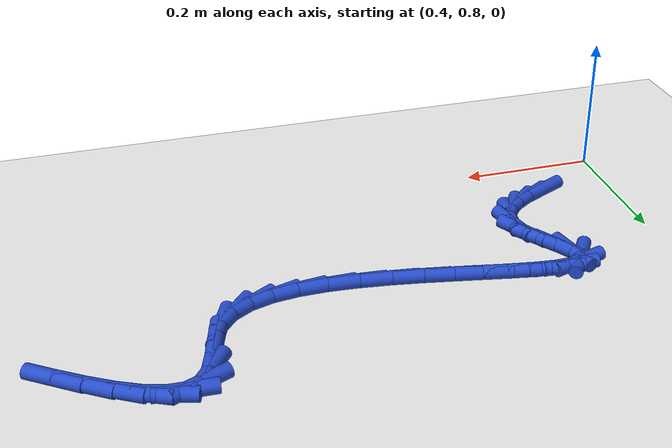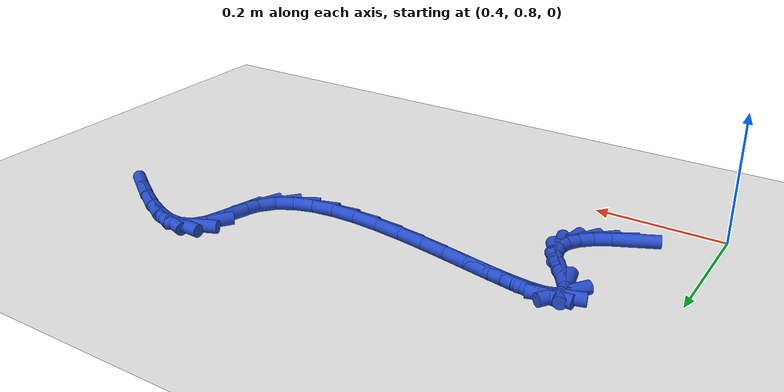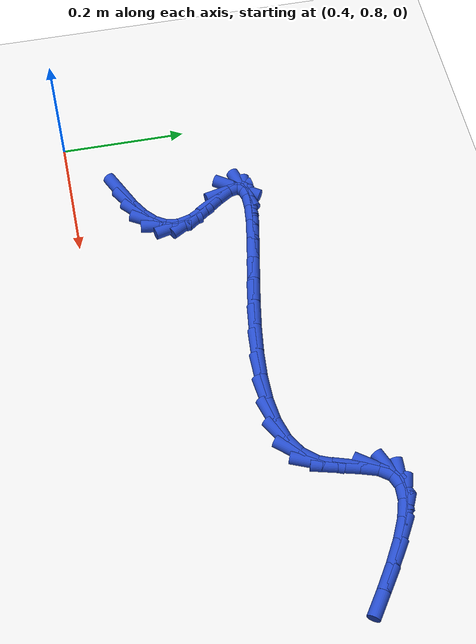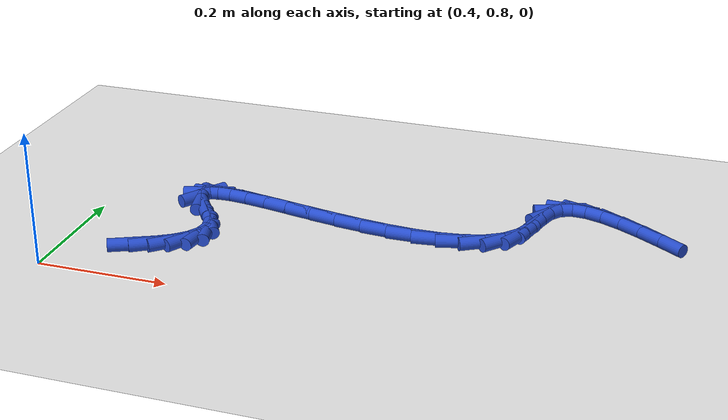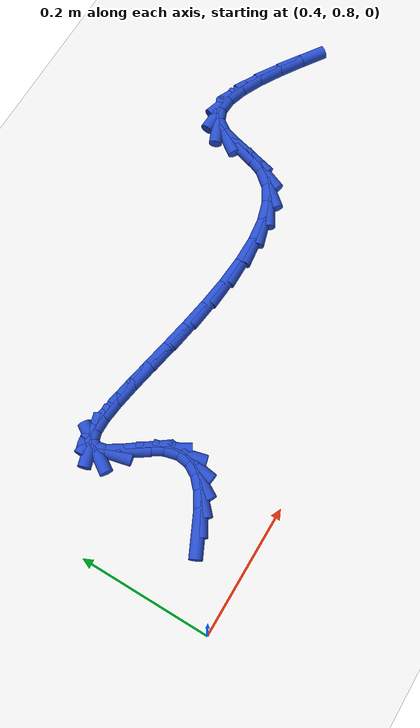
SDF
<sdf version="1.6">
 <world name="default">
  <model name="ground_plane">
   <static>1</static>
   <link name="link">
    <collision name="collision">
     <geometry><plane><normal>0 0 1</normal><size>100 100</size></plane></geometry>
     <surface><friction><ode><mu>100</mu><mu2>50</mu2></ode></friction></surface>
    </collision>
    <visual name="visual">
     <cast_shadows>0</cast_shadows>
     <geometry><plane><normal>0 0 1</normal><size>100 100</size></plane></geometry>
     <material>
      <script><uri>file://media/materials/scripts/gazebo.material</uri><name>Gazebo/WhiteGlow</name></script>
     </material>
    </visual>
   </link>
  </model>
  <model name="line">
   <link name="link_37">
    <pose>0.5128382767782735 0.8817707462895515 0.01 0 1.57 0.4435798267506703</pose>
    <collision name="collision">
     <geometry><cylinder><radius>0.01</radius><length>0.08</length></cylinder></geometry>
    </collision>
    <visual name="visual">
     <material>
      <script><name>Gazebo/Blue</name><uri>file://media/materials/scripts/gazebo.material</uri></script>
     </material>
     <geometry><cylinder><radius>0.01</radius><length>0.08</length></cylinder></geometry>
    </visual>
   </link>
   <link name="link_38">
    <pose>0.539784136310962 0.8945743723752806 0.01 0 1.57 0.5593846322800319</pose>
    <collision name="collision">
     <geometry><cylinder><radius>0.01</radius><length>0.08</length></cylinder></geometry>
    </collision>
    <visual name="visual">
     <material>
      <script><name>Gazebo/Blue</name><uri>file://media/materials/scripts/gazebo.material</uri></script>
     </material>
     <geometry><cylinder><radius>0.01</radius><length>0.08</length></cylinder></geometry>
    </visual>
   </link>
   <link name="link_39">
    <pose>0.5620475209770007 0.9085133131635202 0.01 0 1.57 0.7457247708682181</pose>
    <collision name="collision">
     <geometry><cylinder><radius>0.01</radius><length>0.08</length></cylinder></geometry>
    </collision>
    <visual name="visual">
     <material>
      <script><name>Gazebo/Blue</name><uri>file://media/materials/scripts/gazebo.material</uri></script>
     </material>
     <geometry><cylinder><radius>0.01</radius><length>0.08</length></cylinder></geometry>
    </visual>
   </link>
   <link name="link_40">
    <pose>0.5787298908203096 0.9239218591141487 0.01 0 1.57 1.035718730863639</pose>
    <collision name="collision">
     <geometry><cylinder><radius>0.01</radius><length>0.08</length></cylinder></geometry>
    </collision>
    <visual name="visual">
     <material>
      <script><name>Gazebo/Blue</name><uri>file://media/materials/scripts/gazebo.material</uri></script>
     </material>
     <geometry><cylinder><radius>0.01</radius><length>0.08</length></cylinder></geometry>
    </visual>
   </link>
   <link name="link_41">
    <pose>0.5889327058848091 0.9411343006870445 0.01 0 1.57 1.425844484476826</pose>
    <collision name="collision">
     <geometry><cylinder><radius>0.01</radius><length>0.08</length></cylinder></geometry>
    </collision>
    <visual name="visual">
     <material>
      <script><name>Gazebo/Blue</name><uri>file://media/materials/scripts/gazebo.material</uri></script>
     </material>
     <geometry><cylinder><radius>0.01</radius><length>0.08</length></cylinder></geometry>
    </visual>
   </link>
   <link name="link_42">
    <pose>0.5917574262144193 0.9604849283420853 0.01 0 1.57 -1.3259842156426436</pose>
    <collision name="collision">
     <geometry><cylinder><radius>0.01</radius><length>0.08</length></cylinder></geometry>
    </collision>
    <visual name="visual">
     <material>
      <script><name>Gazebo/Blue</name><uri>file://media/materials/scripts/gazebo.material</uri></script>
     </material>
     <geometry><cylinder><radius>0.01</radius><length>0.08</length></cylinder></geometry>
    </visual>
   </link>
   <link name="link_43">
    <pose>0.5863055118530607 0.9823080325391496 0.01 0 1.57 -1.0459115863139774</pose>
    <collision name="collision">
     <geometry><cylinder><radius>0.01</radius><length>0.08</length></cylinder></geometry>
    </collision>
    <visual name="visual">
     <material>
      <script><name>Gazebo/Blue</name><uri>file://media/materials/scripts/gazebo.material</uri></script>
     </material>
     <geometry><cylinder><radius>0.01</radius><length>0.08</length></cylinder></geometry>
    </visual>
   </link>
   <link name="link_44">
    <pose>0.5721767744905015 1.006707208733822 0.01 0 1.57 -0.9435112723755731</pose>
    <collision name="collision">
     <geometry><cylinder><radius>0.01</radius><length>0.08</length></cylinder></geometry>
    </collision>
    <visual name="visual">
     <material>
      <script><name>Gazebo/Blue</name><uri>file://media/materials/scripts/gazebo.material</uri></script>
     </material>
     <geometry><cylinder><radius>0.01</radius><length>0.08</length></cylinder></geometry>
    </visual>
   </link>
   <link name="link_45">
    <pose>0.5543511150022675 1.0312955224353124 0.01 0 1.57 -1.0042993922145915</pose>
    <collision name="collision">
     <geometry><cylinder><radius>0.01</radius><length>0.08</length></cylinder></geometry>
    </collision>
    <visual name="visual">
     <material>
      <script><name>Gazebo/Blue</name><uri>file://media/materials/scripts/gazebo.material</uri></script>
     </material>
     <geometry><cylinder><radius>0.01</radius><length>0.08</length></cylinder></geometry>
    </visual>
   </link>
   <link name="link_46">
    <pose>0.5410694321673851 1.05217744566448 0.01 0 1.57 -1.344952709872613</pose>
    <collision name="collision">
     <geometry><cylinder><radius>0.01</radius><length>0.08</length></cylinder></geometry>
    </collision>
    <visual name="visual">
     <material>
      <script><name>Gazebo/Blue</name><uri>file://media/materials/scripts/gazebo.material</uri></script>
     </material>
     <geometry><cylinder><radius>0.01</radius><length>0.08</length></cylinder></geometry>
    </visual>
   </link>
   <link name="link_47">
    <pose>0.5376826420435615 1.066917786595661 0.01 0 1.57 0.9791760040284256</pose>
    <collision name="collision">
     <geometry><cylinder><radius>0.01</radius><length>0.08</length></cylinder></geometry>
    </collision>
    <visual name="visual">
     <material>
      <script><name>Gazebo/Blue</name><uri>file://media/materials/scripts/gazebo.material</uri></script>
     </material>
     <geometry><cylinder><radius>0.01</radius><length>0.08</length></cylinder></geometry>
    </visual>
   </link>
   <link name="link_48">
    <pose>0.5437781699800907 1.0759897963050913 0.01 0 1.57 0.2830122267667571</pose>
    <collision name="collision">
     <geometry><cylinder><radius>0.01</radius><length>0.08</length></cylinder></geometry>
    </collision>
    <visual name="visual">
     <material>
      <script><name>Gazebo/Blue</name><uri>file://media/materials/scripts/gazebo.material</uri></script>
     </material>
     <geometry><cylinder><radius>0.01</radius><length>0.08</length></cylinder></geometry>
    </visual>
   </link>
   <link name="link_49">
    <pose>0.5582728637803533 1.0802051208803385 0.01 0 1.57 0.007807269390180042</pose>
    <collision name="collision">
     <geometry><cylinder><radius>0.01</radius><length>0.08</length></cylinder></geometry>
    </collision>
    <visual name="visual">
     <material>
      <script><name>Gazebo/Blue</name><uri>file://media/materials/scripts/gazebo.material</uri></script>
     </material>
     <geometry><cylinder><radius>0.01</radius><length>0.08</length></cylinder></geometry>
    </visual>
   </link>
   <link name="link_50">
    <pose>0.5800835712477308 1.0803754064089712 0.01 0 1.57 -0.10879544085884654</pose>
    <collision name="collision">
     <geometry><cylinder><radius>0.01</radius><length>0.08</length></cylinder></geometry>
    </collision>
    <visual name="visual">
     <material>
      <script><name>Gazebo/Blue</name><uri>file://media/materials/scripts/gazebo.material</uri></script>
     </material>
     <geometry><cylinder><radius>0.01</radius><length>0.08</length></cylinder></geometry>
    </visual>
   </link>
   <link name="link_51">
    <pose>0.6081271401856042 1.0773122989785566 0.01 0 1.57 -0.16376016130478466</pose>
    <collision name="collision">
     <geometry><cylinder><radius>0.01</radius><length>0.08</length></cylinder></geometry>
    </collision>
    <visual name="visual">
     <material>
      <script><name>Gazebo/Blue</name><uri>file://media/materials/scripts/gazebo.material</uri></script>
     </material>
     <geometry><cylinder><radius>0.01</radius><length>0.08</length></cylinder></geometry>
    </visual>
   </link>
   <link name="link_52">
    <pose>0.6413204183973549 1.0718274446766622 0.01 0 1.57 -0.18816565636135835</pose>
    <collision name="collision">
     <geometry><cylinder><radius>0.01</radius><length>0.08</length></cylinder></geometry>
    </collision>
    <visual name="visual">
     <material>
      <script><name>Gazebo/Blue</name><uri>file://media/materials/scripts/gazebo.material</uri></script>
     </material>
     <geometry><cylinder><radius>0.01</radius><length>0.08</length></cylinder></geometry>
    </visual>
   </link>
   <link name="link_53">
    <pose>0.6785802536863641 1.0647324895908563 0.01 0 1.57 -0.19368368983215872</pose>
    <collision name="collision">
     <geometry><cylinder><radius>0.01</radius><length>0.08</length></cylinder></geometry>
    </collision>
    <visual name="visual">
     <material>
      <script><name>Gazebo/Blue</name><uri>file://media/materials/scripts/gazebo.material</uri></script>
     </material>
     <geometry><cylinder><radius>0.01</radius><length>0.08</length></cylinder></geometry>
    </visual>
   </link>
   <link name="link_54">
    <pose>0.7188234938560124 1.056839079808707 0.01 0 1.57 -0.18485079265071616</pose>
    <collision name="collision">
     <geometry><cylinder><radius>0.01</radius><length>0.08</length></cylinder></geometry>
    </collision>
    <visual name="visual">
     <material>
      <script><name>Gazebo/Blue</name><uri>file://media/materials/scripts/gazebo.material</uri></script>
     </material>
     <geometry><cylinder><radius>0.01</radius><length>0.08</length></cylinder></geometry>
    </visual>
   </link>
   <link name="link_55">
    <pose>0.760966986709682 1.048958861417781 0.01 0 1.57 -0.1627760877235763</pose>
    <collision name="collision">
     <geometry><cylinder><radius>0.01</radius><length>0.08</length></cylinder></geometry>
    </collision>
    <visual name="visual">
     <material>
      <script><name>Gazebo/Blue</name><uri>file://media/materials/scripts/gazebo.material</uri></script>
     </material>
     <geometry><cylinder><radius>0.01</radius><length>0.08</length></cylinder></geometry>
    </visual>
   </link>
   <link name="link_56">
    <pose>0.8039275800507533 1.0419034805056469 0.01 0 1.57 -0.12624745341101354</pose>
    <collision name="collision">
     <geometry><cylinder><radius>0.01</radius><length>0.08</length></cylinder></geometry>
    </collision>
    <visual name="visual">
     <material>
      <script><name>Gazebo/Blue</name><uri>file://media/materials/scripts/gazebo.material</uri></script>
     </material>
     <geometry><cylinder><radius>0.01</radius><length>0.08</length></cylinder></geometry>
    </visual>
   </link>
   <link name="link_57">
    <pose>0.846622121682608 1.0364845831598724 0.01 0 1.57 -0.07172927232584644</pose>
    <collision name="collision">
     <geometry><cylinder><radius>0.01</radius><length>0.08</length></cylinder></geometry>
    </collision>
    <visual name="visual">
     <material>
      <script><name>Gazebo/Blue</name><uri>file://media/materials/scripts/gazebo.material</uri></script>
     </material>
     <geometry><cylinder><radius>0.01</radius><length>0.08</length></cylinder></geometry>
    </visual>
   </link>
   <link name="link_58">
    <pose>0.8879674594086271 1.033513815468025 0.01 0 1.57 0.007426897754686918</pose>
    <collision name="collision">
     <geometry><cylinder><radius>0.01</radius><length>0.08</length></cylinder></geometry>
    </collision>
    <visual name="visual">
     <material>
      <script><name>Gazebo/Blue</name><uri>file://media/materials/scripts/gazebo.material</uri></script>
     </material>
     <geometry><cylinder><radius>0.01</radius><length>0.08</length></cylinder></geometry>
    </visual>
   </link>
   <link name="link_59">
    <pose>0.9268804410321914 1.0338028235176728 0.01 0 1.57 0.12256730114680607</pose>
    <collision name="collision">
     <geometry><cylinder><radius>0.01</radius><length>0.08</length></cylinder></geometry>
    </collision>
    <visual name="visual">
     <material>
      <script><name>Gazebo/Blue</name><uri>file://media/materials/scripts/gazebo.material</uri></script>
     </material>
     <geometry><cylinder><radius>0.01</radius><length>0.08</length></cylinder></geometry>
    </visual>
   </link>
   <link name="link_60">
    <pose>0.9622779143566829 1.0381632533963836 0.01 0 1.57 0.29157159140706174</pose>
    <collision name="collision">
     <geometry><cylinder><radius>0.01</radius><length>0.08</length></cylinder></geometry>
    </collision>
    <visual name="visual">
     <material>
      <script><name>Gazebo/Blue</name><uri>file://media/materials/scripts/gazebo.material</uri></script>
     </material>
     <geometry><cylinder><radius>0.01</radius><length>0.08</length></cylinder></geometry>
    </visual>
   </link>
   <link name="link_61">
    <pose>0.993076727185482 1.0474067511917244 0.01 0 1.57 0.5365466157539174</pose>
    <collision name="collision">
     <geometry><cylinder><radius>0.01</radius><length>0.08</length></cylinder></geometry>
    </collision>
    <visual name="visual">
     <material>
      <script><name>Gazebo/Blue</name><uri>file://media/materials/scripts/gazebo.material</uri></script>
     </material>
     <geometry><cylinder><radius>0.01</radius><length>0.08</length></cylinder></geometry>
    </visual>
   </link>
   <link name="link_62">
    <pose>1.0181937273219703 1.0623449629912642 0.01 0 1.57 0.8629508604575247</pose>
    <collision name="collision">
     <geometry><cylinder><radius>0.01</radius><length>0.08</length></cylinder></geometry>
    </collision>
    <visual name="visual">
     <material>
      <script><name>Gazebo/Blue</name><uri>file://media/materials/scripts/gazebo.material</uri></script>
     </material>
     <geometry><cylinder><radius>0.01</radius><length>0.08</length></cylinder></geometry>
    </visual>
   </link>
   <link name="link_63">
    <pose>1.0365457625695291 1.0837895348825701 0.01 0 1.57 1.182268750996283</pose>
    <collision name="collision">
     <geometry><cylinder><radius>0.01</radius><length>0.08</length></cylinder></geometry>
    </collision>
    <visual name="visual">
     <material>
      <script><name>Gazebo/Blue</name><uri>file://media/materials/scripts/gazebo.material</uri></script>
     </material>
     <geometry><cylinder><radius>0.01</radius><length>0.08</length></cylinder></geometry>
    </visual>
   </link>
   <link name="link_64">
    <pose>1.047901483114695 1.11153142778282 0.01 0 1.57 1.318170365950178</pose>
    <collision name="collision">
     <geometry><cylinder><radius>0.01</radius><length>0.08</length></cylinder></geometry>
    </collision>
    <visual name="visual">
     <material>
      <script><name>Gazebo/Blue</name><uri>file://media/materials/scripts/gazebo.material</uri></script>
     </material>
     <geometry><cylinder><radius>0.01</radius><length>0.08</length></cylinder></geometry>
    </visual>
   </link>
   <link name="link_65">
    <pose>1.0555465507052335 1.1411472899756216 0.01 0 1.57 1.2675876353500377</pose>
    <collision name="collision">
     <geometry><cylinder><radius>0.01</radius><length>0.08</length></cylinder></geometry>
    </collision>
    <visual name="visual">
     <material>
      <script><name>Gazebo/Blue</name><uri>file://media/materials/scripts/gazebo.material</uri></script>
     </material>
     <geometry><cylinder><radius>0.01</radius><length>0.08</length></cylinder></geometry>
    </visual>
   </link>
   <link name="link_66">
    <pose>1.0636742093600924 1.1671262454743698 0.01 0 1.57 0.9421194328646237</pose>
    <collision name="collision">
     <geometry><cylinder><radius>0.01</radius><length>0.08</length></cylinder></geometry>
    </collision>
    <visual name="visual">
     <material>
      <script><name>Gazebo/Blue</name><uri>file://media/materials/scripts/gazebo.material</uri></script>
     </material>
     <geometry><cylinder><radius>0.01</radius><length>0.08</length></cylinder></geometry>
    </visual>
   </link>
   <link name="link_67">
    <pose>1.076195614323961 1.184347499382781 0.01 0 1.57 0.39113382868434315</pose>
    <collision name="collision">
     <geometry><cylinder><radius>0.01</radius><length>0.08</length></cylinder></geometry>
    </collision>
    <visual name="visual">
     <material>
      <script><name>Gazebo/Blue</name><uri>file://media/materials/scripts/gazebo.material</uri></script>
     </material>
     <geometry><cylinder><radius>0.01</radius><length>0.08</length></cylinder></geometry>
    </visual>
   </link>
   <link name="link_68">
    <pose>1.09409991679033 1.1917308924832453 0.01 0 1.57 -0.050722573367266585</pose>
    <collision name="collision">
     <geometry><cylinder><radius>0.01</radius><length>0.08</length></cylinder></geometry>
    </collision>
    <visual name="visual">
     <material>
      <script><name>Gazebo/Blue</name><uri>file://media/materials/scripts/gazebo.material</uri></script>
     </material>
     <geometry><cylinder><radius>0.01</radius><length>0.08</length></cylinder></geometry>
    </visual>
   </link>
   <link name="link_69">
    <pose>1.1166479646959675 1.1905862156336227 0.01 0 1.57 -0.30537885236668416</pose>
    <collision name="collision">
     <geometry><cylinder><radius>0.01</radius><length>0.08</length></cylinder></geometry>
    </collision>
    <visual name="visual">
     <material>
      <script><name>Gazebo/Blue</name><uri>file://media/materials/scripts/gazebo.material</uri></script>
     </material>
     <geometry><cylinder><radius>0.01</radius><length>0.08</length></cylinder></geometry>
    </visual>
   </link>
   <link name="link_70">
    <pose>1.1430780937698428 1.182254390254374 0.01 0 1.57 -0.44734917595654355</pose>
    <collision name="collision">
     <geometry><cylinder><radius>0.01</radius><length>0.08</length></cylinder></geometry>
    </collision>
    <visual name="visual">
     <material>
      <script><name>Gazebo/Blue</name><uri>file://media/materials/scripts/gazebo.material</uri></script>
     </material>
     <geometry><cylinder><radius>0.01</radius><length>0.08</length></cylinder></geometry>
    </visual>
   </link>
   <link name="link_71">
    <pose>1.1726286397409256 1.1680763377659598 0.01 0 1.57 -0.5297003296626155</pose>
    <collision name="collision">
     <geometry><cylinder><radius>0.01</radius><length>0.08</length></cylinder></geometry>
    </collision>
    <visual name="visual">
     <material>
      <script><name>Gazebo/Blue</name><uri>file://media/materials/scripts/gazebo.material</uri></script>
     </material>
     <geometry><cylinder><radius>0.01</radius><length>0.08</length></cylinder></geometry>
    </visual>
   </link>
   <link name="link_72">
    <pose>1.2045379383381851 1.1493929795888413 0.01 0 1.57 -0.5778129608776233</pose>
    <collision name="collision">
     <geometry><cylinder><radius>0.01</radius><length>0.08</length></cylinder></geometry>
    </collision>
    <visual name="visual">
     <material>
      <script><name>Gazebo/Blue</name><uri>file://media/materials/scripts/gazebo.material</uri></script>
     </material>
     <geometry><cylinder><radius>0.01</radius><length>0.08</length></cylinder></geometry>
    </visual>
   </link>
   <link name="link_73">
    <pose>1.2380443252905904 1.127545237143479 0.01 0 1.57 -0.6034966566351577</pose>
    <collision name="collision">
     <geometry><cylinder><radius>0.01</radius><length>0.08</length></cylinder></geometry>
    </collision>
    <visual name="visual">
     <material>
      <script><name>Gazebo/Blue</name><uri>file://media/materials/scripts/gazebo.material</uri></script>
     </material>
     <geometry><cylinder><radius>0.01</radius><length>0.08</length></cylinder></geometry>
    </visual>
   </link>
  </model>
 </world>
</sdf>
